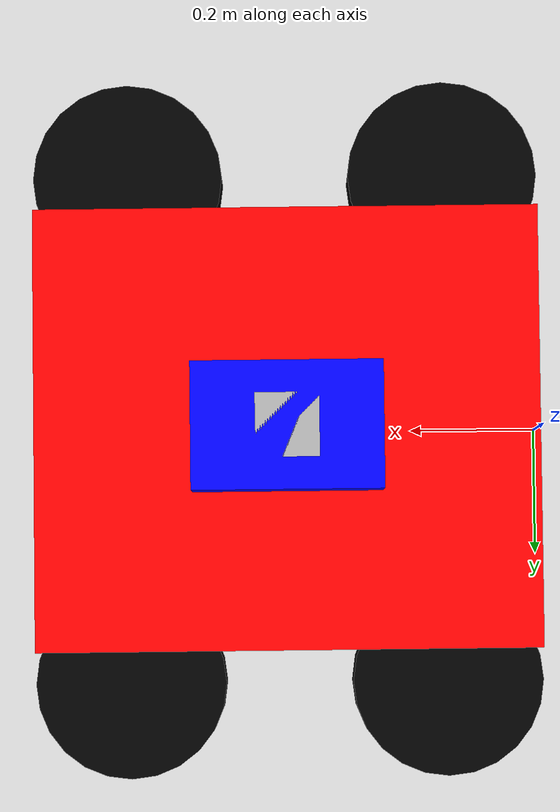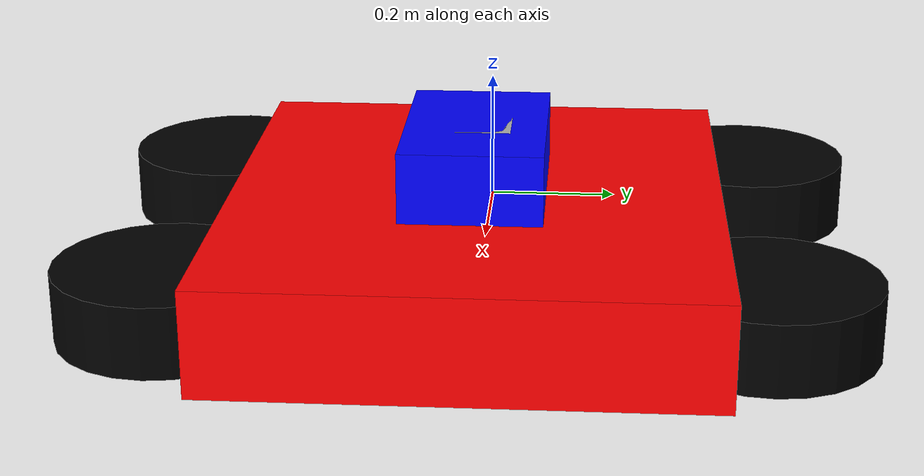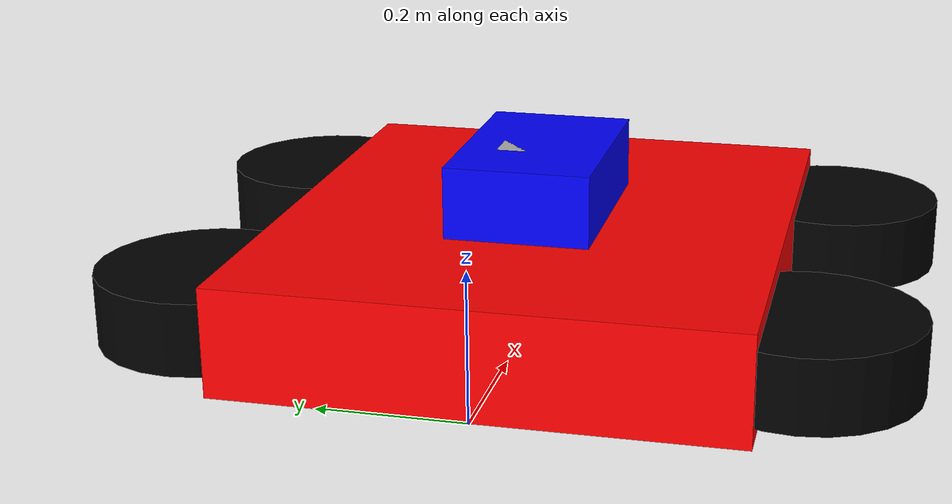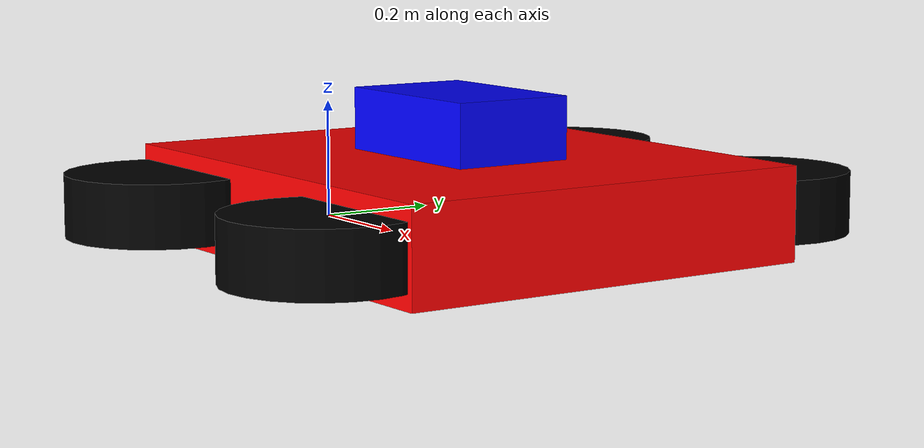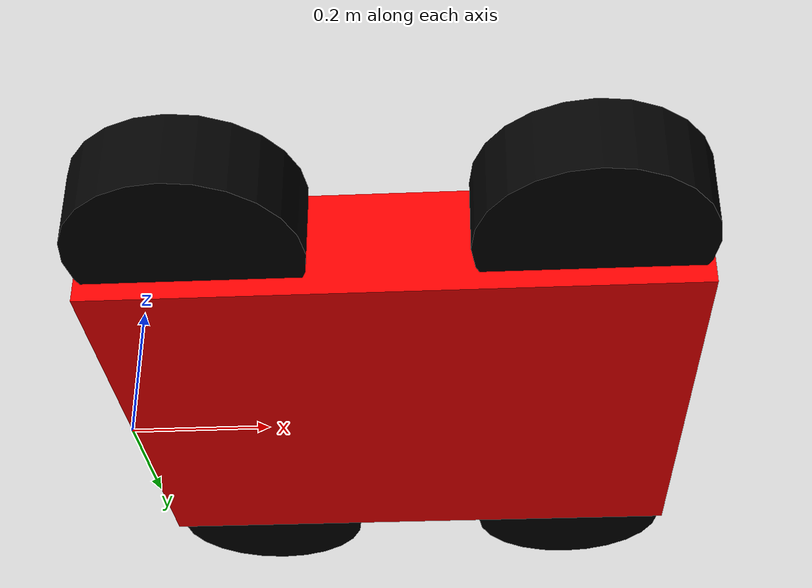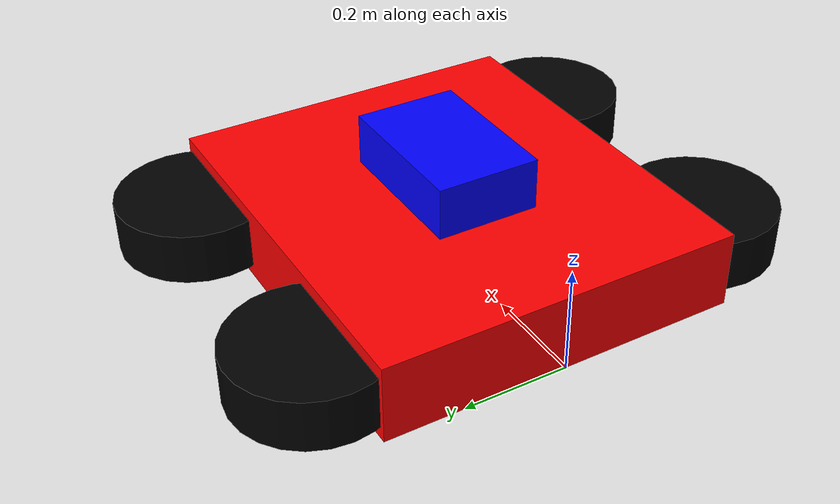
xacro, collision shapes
<?xml version="1.0"?>

<robot xmlns:xacro="http://www.ros.org/wiki/xacro" name="my_robot">

    <!-- importing the base link and base_footprint link -->
    <xacro:include filename="$(find my_robot_description)/urdf/base.xacro" />

    <!-- importing the template for the robot wheels -->
    <xacro:include filename="$(find my_robot_description)/urdf/my_wheel.xacro"/>

    <!-- Macros for importing the lidar -->
    <xacro:include filename="$(find my_robot_description)/urdf/lidar_sensor.xacro"/>

   <!-- Macros for importing the camera -->
    <xacro:include filename="$(find my_robot_description)/urdf/camera.xacro"/>

</robot>

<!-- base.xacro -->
<robot xmlns:xacro="http://www.ros.org/wiki/xacro">
    <link name="base_link" />

    <!-- body attributes -->
    <xacro:property name="body_mass" value="2.0"/>

    <!-- creating a resuable macro for the box inertial -->
    <xacro:macro name="inertial_box" params="mass x y z">
        <inertial>
            <origin xyz="0.0 0.0 0.0" rpy="0.0 0.0 0.0"/>
            <mass value="${mass}" />
            <inertia ixx="${(1/12) * mass * (y*y+z*z)}" ixy="0.0" ixz="0.0"
                    iyy="${(1/12) * mass * (x*x+z*z)}" iyz="0.0"
                    izz="${(1/12) * mass * (x*x+y*y)}" />
        </inertial>
    </xacro:macro>

    <link name="chassis">

        <xacro:inertial_box mass="${body_mass}" x="0.8" y="0.7" z="0.1" />

        <visual>
            <origin xyz="0.0 0.0 0.075" rpy="0.0 0.0 0.0"/>
            <geometry>
                <box size="0.8 0.7 0.15"/>
            </geometry>
            <material name="">
                <color rgba="1.0 0.0 0.0 1.0"/>
                <texture filename=""/>
            </material>
        </visual>
        <collision>
            <origin xyz="0.0 0.0 0.075" rpy="0.0 0.0 0.0"/>
            <geometry>
                <box size="0.8 0.7 0.15"/>
            </geometry>
        </collision>
    </link>

    <joint name="base_joint" type="fixed">
        <origin xyz="0.4 0.0 0.0" rpy="0.0 0.0 0.0"/>
        <parent link="base_link"/>
        <child link="chassis"/>
        <axis xyz="0.0 0.0 0.0"/>
    </joint>

    <gazebo reference="chassis">
        <mu1>0.2</mu1>
        <mu2>0.2</mu2>
        <material>Gazebo/Red</material>
    </gazebo>

</robot>

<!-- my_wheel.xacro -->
<robot xmlns:xacro="http://www.ros.org/wiki/xacro" >
    <!-- Adding macros for computation of inertial matrix so as to create
    a close to realistic model -->
    <!-- property macros describing dimensions of the wheels -->
    <!-- assuming wheels to be of a hypothetical material with density 15 -->
    <xacro:property name="wheel_density" value="15"/>
    <xacro:property name="wheel_radius" value="0.15"/>
    <xacro:property name="wheel_length" value="0.1"/>
    <xacro:property name="pi" value="3.141592654"/>
    <xacro:property name="body_mass" value="10"/>

    <xacro:property name="wheel_mass" value="${wheel_density*pi*wheel_radius*wheel_radius*wheel_length}"/>

    <xacro:property name="Iz_wheel" value="${0.5*wheel_mass*wheel_radius*wheel_radius}" />
    <xacro:property name="I_wheel" value="${(1.0/12.0)*wheel_mass*(3.0*wheel_radius*wheel_radius+wheel_length*wheel_length)}"/>

    <!-- creating the inertial macros -->
    <xacro:macro name="inertia_wheel">
        <inertial>
            <origin xyz="0.0 0.0 0.0" rpy="0.0 0.0 0.0"/>
            <mass value="${wheel_mass}"/>
            <inertia ixx="${I_wheel}" ixy="0.0" ixz="0.0" iyy="${I_wheel}" iyz="0.0" izz="${Iz_wheel}"/>
        </inertial>
    </xacro:macro>

<!-- creating a xacro macro for the template of the wheels -->
    <xacro:macro name="wheel" params="name x y file_path">
        <link name="wheel_${name}_link">
            <xacro:inertia_wheel />

            <visual name="">
                <origin xyz="0.0 0.0 0.0" rpy="0.0 0.0 0.0"/>
                <geometry>
                    <mesh filename="${file_path}" scale="0.005 0.005 0.005"/>
                </geometry>
                <material name="black">
                    <color rgba="0.0 0.0 0.0 1.0"/>
                </material>
            </visual>
            <collision>
                <origin xyz="0.0 0.0 0.0" rpy="0.0 0.0 0.0"/>
                <geometry>
                    <cylinder radius="0.15" length="0.1"/>
                </geometry>
            </collision>
        </link>

        <joint name="wheel_${name}_joint" type="continuous">
            <origin xyz="${x} ${y} 0.075" rpy="0 0.0 0.0"/>
            <parent link="chassis"/>
            <child link="wheel_${name}_link"/>
            <axis xyz="0 1 0"/>
            <limit effort="100.0" lower="-10.0" upper="10.0" velocity="10"/>
            <dynamics damping="0.1" friction="0.9"/>

        </joint>

        <gazebo reference="wheel_${name}_link">
            <mu1>0.2</mu1>
            <mu2>0.2</mu2>
            <material>Gazebo/Black</material>
        </gazebo>

    </xacro:macro>

    <!-- Creating wheels using macros template -->
    <xacro:wheel name="rear_right"  x="0.250" y ="0.40" file_path="package://my_robot_description/meshes/right_tire.stl" />
    <xacro:wheel name="front_right" x="-0.250" y ="0.40" file_path="package://my_robot_description/meshes/right_tire.stl" />
    <xacro:wheel name="front_left"  x="-0.250" y ="-0.40" file_path="package://my_robot_description/meshes/left_tire.stl" />
    <xacro:wheel name="rear_left"   x="0.250" y ="-0.40" file_path="package://my_robot_description/meshes/left_tire.stl" />
    <!-- wheel_${name}_joint -->

    <!-- adding skid controller essential for teleop and navigation -->
    <gazebo>
        <plugin name="skid_steer_drive_controller" filename="libgazebo_ros_skid_steer_drive.so">
            <updateRate>100.0</updateRate>
            <robotNamespace>/</robotNamespace>
            <leftFrontJoint>wheel_front_left_joint</leftFrontJoint>
            <rightFrontJoint>wheel_front_right_joint</rightFrontJoint>
            <leftRearJoint>wheel_rear_left_joint</leftRearJoint>
            <rightRearJoint>wheel_rear_right_joint</rightRearJoint>
            <wheelSeparation>0.8</wheelSeparation>
            <wheelDiameter>${2 * wheel_radius}</wheelDiameter>
            <robotBaseFrame>base_footprint</robotBaseFrame>
            <torque>50</torque>
            <!-- for sending command messages (twist) -->
            <commandTopic>cmd_vel</commandTopic>
            <odometryTopic>odom</odometryTopic>
            <odometryFrame>odom</odometryFrame>
            <publishWheelTF>true</publishWheelTF>
            <publishOdom>true</publishOdom>
            <publishWheelJointState>true</publishWheelJointState>
            <broadcastTF>false</broadcastTF>
            <covariance_x>0.0001</covariance_x>
            <covariance_y>0.0001</covariance_y>
            <covariance_yaw>0.01</covariance_yaw>
        </plugin>
    </gazebo>

    <!-- creating the transmissions for each joint  -->

    <!-- adding the ros control plugin: It creates a communication between the comand from a controller
    to the joints -->

</robot>

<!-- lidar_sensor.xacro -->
<robot xmlns:xacro="http://www.ros.org/wiki/xacro">

    <link name="sensor_mount">
        <inertial>
            <mass value="1e-5" />
            <origin xyz="0 0 0.16" rpy="0 0 0"/>
            <inertia ixx="1e-6" ixy="0" ixz="0" iyy="1e-6" iyz="0" izz="1e-6" />
        </inertial>

        <visual>
            <origin xyz="0 0 0.0" rpy="0 0 0"/>
            <material name="">
                <color rgba="0.0 0.0 1.0 1.0"/>
                <texture filename=""/>
            </material>
            <geometry>
                <box size="0.1 0.1 0.05"/>
            </geometry>
        </visual>

        <collision>
            <origin xyz="0.0 0.0 0.0" rpy="0.0 0.0 0.0"/>
            <geometry>
                <box size="0.3 0.2 0.2"/>
            </geometry>
        </collision>
    </link>

    <joint name="sensor_mount_joint" type="fixed">
        <origin xyz="0.0 0.0 0.15" rpy="0.0 0.0 0.0"/>
        <parent link="chassis"/>
        <child link="sensor_mount"/>
        <axis xyz="0.0 0.0 0.0"/>
    </joint>

    <!-- Hokuyo Laser -->
    <link name="hokuyo_lidar">
        <inertial>
            <mass value="1e-5" />
            <origin xyz="0 0 0" rpy="0 0 0"/>
            <inertia ixx="1e-6" ixy="0" ixz="0" iyy="1e-6" iyz="0" izz="1e-6" />
        </inertial>

        <visual>
            <origin xyz="0 0 0" rpy="0 0 0"/>
            <geometry>
                <mesh filename="package://my_robot_description/meshes/hokuyo.dae" scale="1 1 1"/>
            </geometry>
        </visual>

        <collision>
            <origin xyz="0.0 0.0 0" rpy="0.0 0.0 0.0"/>
            <geometry>
                <box size="0.1 0.1 0.1"/>
            </geometry>
        </collision>
    </link>

    <joint name="hokuyo_joint" type="fixed">
        <axis xyz="0 1 0"/>
        <origin xyz="0 0 0.05" rpy="0 0 0"/>
        <parent link="sensor_mount"/>
        <child link="hokuyo_lidar"/>
    </joint>

    <gazebo reference="sensor_mount">
        <mu1>0.2</mu1>
        <mu2>0.2</mu2>
        <material>Gazebo/Blue</material>
    </gazebo>

     <!-- hokuyo -->
    <gazebo reference="hokuyo_lidar">
      <sensor type="ray" name="hokuyo_lidar_sensor">
        <always_on>true</always_on>
        <pose relative_to="hokuyo_lidar">0 0 0 0 0 0</pose>
        <visualize>false</visualize>
        <update_rate>20</update_rate>
        <ray>
          <scan>
            <horizontal>
              <samples>720</samples>
              <resolution>1</resolution>
              <min_angle>-3.14</min_angle>
              <max_angle>3.14</max_angle>
            </horizontal>
          </scan>
          <range>
            <min>0.5</min>
            <max>20</max>
            <resolution>0.01</resolution>
          </range>
          <noise>
            <type>gaussian</type>
            <mean>0.0</mean>
            <stddev>0.01</stddev>
          </noise>
        </ray>
        <plugin name="lidar" filename="libgazebo_ros_laser.so">
          <output_type>sensor_msgs/LaserScan</output_type>
          <frameName>hokuyo_lidar</frameName>
          <topicName>/scan</topicName>
        </plugin>
      </sensor>
    </gazebo>

</robot>

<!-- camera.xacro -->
<robot xmlns:xacro="http://www.ros.org/wiki/xacro">

	<link name="camera_link">

        <visual>
            <origin xyz="0 0 0" rpy="0 0 0"/>
            <geometry>
                <box size="0.03 0.1 0.1"/>
            </geometry>
            <material name="yellow">
            	<color rgba="1.0 0.92 0.016 1.0"/>
                <texture filename=""/>
            </material>
        </visual>

    </link>

    <joint name="camera_joint" type="fixed">
        <origin xyz="0.4 0 0.075" rpy="0 0 0"/>
        <parent link="chassis"/>
        <child link="camera_link"/>
    </joint>

    <gazebo reference="camera_link">
    	<material>Gazebo/DarkYellow</material>
    </gazebo>

</robot>
